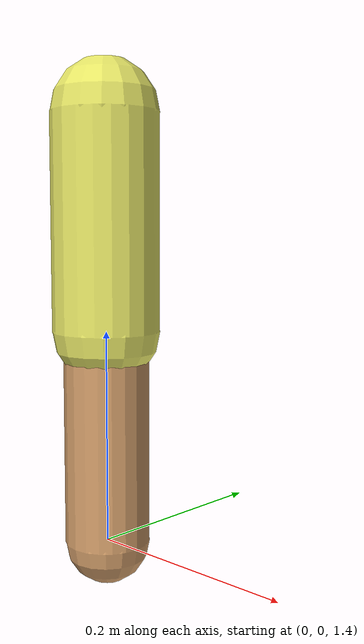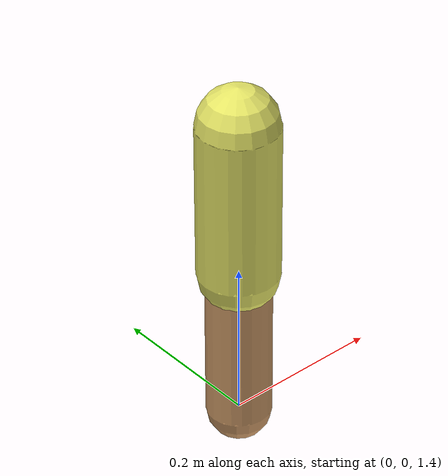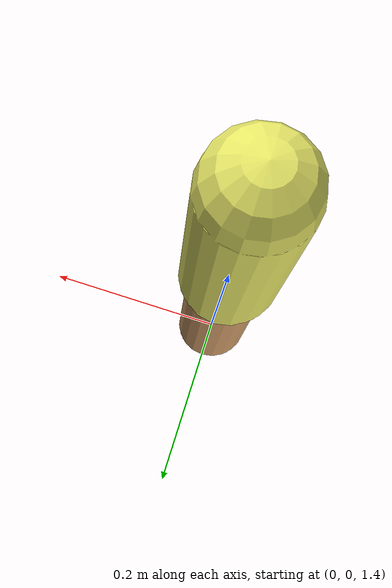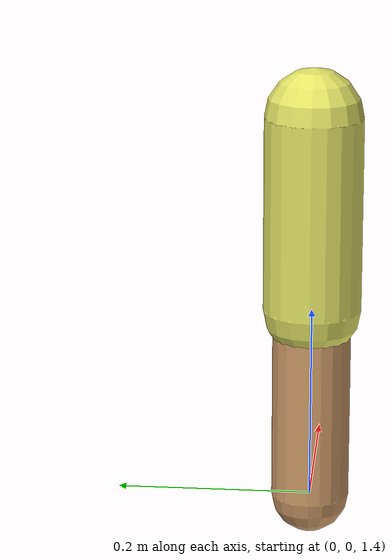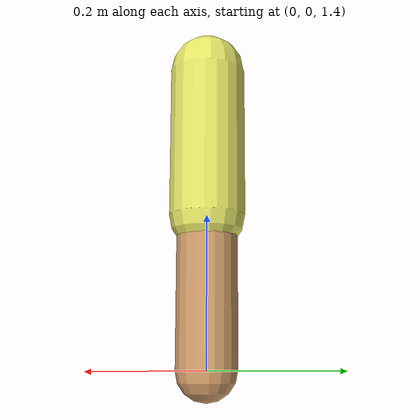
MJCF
<mujoco model="hopper">
  <compiler angle="degree" inertiafromgeom="true"/>
  <default>
    <joint armature="1" damping="1" limited="true"/>
    <geom conaffinity="1" condim="1" contype="1" margin="0.001" material="geom" rgba="0.8 0.6 .4 1" solimp=".8 .8 .01" solref=".02 1"/>
    <motor ctrllimited="true" ctrlrange="-.4 .4"/>
  </default>
  <option integrator="RK4" timestep="0.002"/>
  <visual>
    <map znear="0.02"/>
  </visual>
  <worldbody>
    <light cutoff="100" diffuse="1 1 1" dir="-0 0 -1.3" directional="true" exponent="1" pos="0 0 1.3" specular=".1 .1 .1"/>
    <geom conaffinity="1" condim="3" name="floor" pos="0 0 0" rgba="0.8 0.9 0.8 1" size="20 20 .125" type="plane" material="MatPlane"/>
    <body name="0" pos="0 0 1.6">
      <camera name="track" mode="trackcom" pos="0 -3 0.25" xyaxes="1 0 0 0 0 1"/>
      <joint armature="0" axis="1 0 0" damping="0" limited="false" name="rootx" pos="0 0 0" stiffness="0" type="slide"/>
      <joint armature="0" axis="0 0 1" damping="0" limited="false" name="rootz" pos="0 0 0" ref="1.25" stiffness="0" type="slide"/>
      <joint armature="0" axis="0 1 0" damping="0" limited="false" name="0_joint" pos="0 0 0" stiffness="0" type="hinge"/>
      <geom friction="0.9" fromto="0 0 0 0 0 0.2" size="0.05" type="capsule" rgba="0.9 0.9 .4 1"/>
      <body name="1" pos="0 0 0">
        <joint axis="0 -1 0" name="1_joint" pos="0 0 0" range="-50 50" type="hinge"/>
        <geom friction="0.9" fromto="0 0 0 0 0 -0.2" size="0.04" type="capsule"/>
      </body>
    </body>
  </worldbody>
  <actuator>
    <motor ctrllimited="true" ctrlrange="-1.0 1.0" gear="150" joint="1_joint" name="1_joint"/>
  </actuator>
  <asset>
    <texture type="skybox" builtin="gradient" rgb1=".4 .5 .6" rgb2="0 0 0" width="100" height="100"/>
    <texture builtin="flat" height="1278" mark="cross" markrgb="1 1 1" name="texgeom" random="0.01" rgb1="0.8 0.6 0.4" rgb2="0.8 0.6 0.4" type="cube" width="127"/>
    <texture builtin="checker" height="100" name="texplane" rgb1="0.38 0.48 0.38" rgb2="0.4 0.5 0.4" type="2d" width="100"/>
    <material name="MatPlane" reflectance="0.5" shininess="1" specular="1" texrepeat="60 60" texture="texplane"/>
    <material name="geom" texture="texgeom" texuniform="true"/>
  </asset>
</mujoco>
